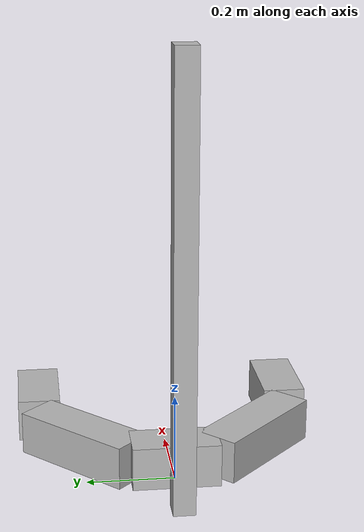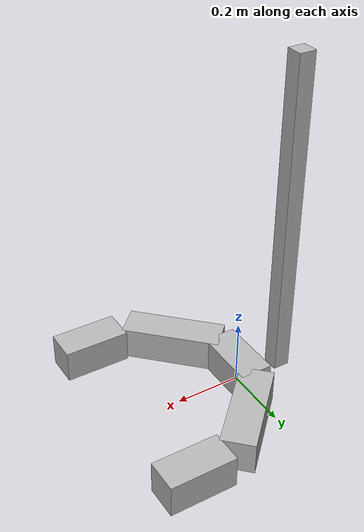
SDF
<?xml version="1.0" ?>
<sdf version="1.5">
  <model name="simple_gripper">
    <joint name="riser_world" type="revolute">
      <child>riser</child>
      <parent>world</parent>
      <axis>
        <limit><lower>0</lower><upper>0</upper></limit>
        <xyz>0 0 1</xyz>
      </axis>
    </joint>
    <link name="riser">
      <pose>-0.15 0.0 0.5 0 0 0</pose>
      <inertial>
        <mass>10</mass>
      </inertial>
      <collision name="collision">
        <geometry>
          <box>
            <size>0.05 0.05 1.0</size>
          </box>
        </geometry>
        <surface>
          <friction>
            <ode>
              <mu>1.0</mu>
              <mu2>1.0</mu2>
            </ode>
          </friction>
          <contact>
            <ode>
              <kp>10000000.0</kp>
              <kd>1.0</kd>
              <min_depth>0.001</min_depth>
              <max_vel>0.1</max_vel>
            </ode>
          </contact>
        </surface>
      </collision>
      <visual name="visual">
        <geometry>
          <box>
            <size>0.05 0.05 1.0</size>
          </box>
        </geometry>
      </visual>
    </link>
    <link name="palm">
      <pose>0.0 0.0 0.05 0 0 0</pose>
      <inertial>
        <mass>0.5</mass>
      </inertial>
      <collision name="collision">
        <geometry>
          <box>
            <size>0.1 0.2 0.1</size>
          </box>
        </geometry>
        <surface>
          <friction>
            <ode>
              <mu>1.0</mu>
              <mu2>1.0</mu2>
            </ode>
          </friction>
          <contact>
            <ode>
              <kp>10000000.0</kp>
              <kd>1.0</kd>
              <min_depth>0.001</min_depth>
              <max_vel>0.1</max_vel>
            </ode>
          </contact>
        </surface>
      </collision>
      <visual name="visual">
        <geometry>
          <box>
            <size>0.1 0.2 0.1</size>
          </box>
        </geometry>
      </visual>
    </link>
    <link name="left_finger">
      <pose>0.1 0.2 0.05 0 0 -0.78539</pose>
      <inertial>
        <mass>0.1</mass>
      </inertial>
      <collision name="collision">
        <geometry>
          <box>
            <size>0.1 0.3 0.1</size>
          </box>
        </geometry>
        <surface>
          <friction>
            <ode>
              <mu>1.0</mu>
              <mu2>1.0</mu2>
            </ode>
          </friction>
          <contact>
            <ode>
              <kp>10000000.0</kp>
              <kd>1.0</kd>
              <min_depth>0.001</min_depth>
              <max_vel>0.1</max_vel>
            </ode>
          </contact>
        </surface>
      </collision>
      <visual name="visual">
        <geometry>
          <box>
            <size>0.1 0.3 0.1</size>
          </box>
        </geometry>
      </visual>
    </link>
    <link name="left_finger_tip">
      <pose>0.336 0.3 0.05 0 0 1.5707</pose>
      <inertial>
        <mass>0.5</mass>
      </inertial>
      <collision name="collision">
        <geometry>
          <box>
            <size>0.1 0.2 0.1</size>
          </box>
        </geometry>
        <surface>
          <friction>
            <ode>
              <mu>1.0</mu>
              <mu2>1.0</mu2>
            </ode>
          </friction>
          <contact>
            <ode>
              <kp>10000000.0</kp>
              <kd>1.0</kd>
              <min_depth>0.001</min_depth>
              <max_vel>0.1</max_vel>
            </ode>
          </contact>
        </surface>
      </collision>
      <visual name="visual">
        <geometry>
          <box>
            <size>0.1 0.2 0.1</size>
          </box>
        </geometry>
      </visual>
    </link>
    <link name="right_finger">
      <pose>0.1 -0.2 0.05 0 0 .78539</pose>
      <inertial>
        <mass>0.1</mass>
      </inertial>
      <collision name="collision">
        <geometry>
          <box>
            <size>0.1 0.3 0.1</size>
          </box>
        </geometry>
        <surface>
          <friction>
            <ode>
              <mu>1.0</mu>
              <mu2>1.0</mu2>
            </ode>
          </friction>
          <contact>
            <ode>
              <kp>10000000.0</kp>
              <kd>1.0</kd>
              <min_depth>0.001</min_depth>
              <max_vel>0.1</max_vel>
            </ode>
          </contact>
        </surface>
      </collision>
      <visual name="visual">
        <geometry>
          <box>
            <size>0.1 0.3 0.1</size>
          </box>
        </geometry>
      </visual>
    </link>
    <link name="right_finger_tip">
      <pose>0.336 -0.3 0.05 0 0 1.5707</pose>
      <inertial>
        <mass>0.1</mass>
      </inertial>
      <collision name="collision">
        <geometry>
          <box>
            <size>0.1 0.2 0.1</size>
          </box>
        </geometry>
        <surface>
          <friction>
            <ode>
              <mu>1.0</mu>
              <mu2>1.0</mu2>
            </ode>
          </friction>
          <contact>
            <ode>
              <kp>10000000.0</kp>
              <kd>1.0</kd>
              <min_depth>0.001</min_depth>
              <max_vel>0.1</max_vel>
            </ode>
          </contact>
        </surface>
      </collision>
      <visual name="visual">
        <geometry>
          <box>
            <size>0.1 0.2 0.1</size>
          </box>
        </geometry>
      </visual>
    </link>
    <joint name="palm_left_finger" type="revolute">
      <pose>0 -0.15 0 0 0 0</pose>
      <child>left_finger</child>
      <parent>palm</parent>
      <axis>
        <limit>
          <lower>-0.8</lower>
          <upper>0.8</upper>
        </limit>
        <xyz>0 0 1</xyz>
        <use_parent_model_frame>true</use_parent_model_frame>
      </axis>
    </joint>
    <joint name="left_finger_tip" type="revolute">
      <pose>0 0.1 0 0 0 0</pose>
      <child>left_finger_tip</child>
      <parent>left_finger</parent>
      <axis>
        <limit>
          <lower>-0.8</lower>
          <upper>0.8</upper>
        </limit>
        <xyz>0 0 1</xyz>
        <use_parent_model_frame>true</use_parent_model_frame>
      </axis>
    </joint>
    <joint name="palm_right_finger" type="revolute">
      <pose>0 0.15 0 0 0 0</pose>
      <child>right_finger</child>
      <parent>palm</parent>
      <axis>
        <limit>
          <lower>-0.8</lower>
          <upper>0.8</upper>
        </limit>
        <xyz>0 0 1</xyz>
        <use_parent_model_frame>true</use_parent_model_frame>
      </axis>
    </joint>
    <joint name="right_finger_tip" type="revolute">
      <pose>0 0.1 0 0 0 0</pose>
      <child>right_finger_tip</child>
      <parent>right_finger</parent>
      <axis>
        <limit>
          <lower>-0.8</lower>
          <upper>0.8</upper>
        </limit>
        <xyz>0 0 1</xyz>
        <use_parent_model_frame>true</use_parent_model_frame>
      </axis>
    </joint>
    <joint name="palm_riser" type="prismatic">
      <child>palm</child>
      <parent>riser</parent>
      <axis>
        <limit>
          <lower>0</lower>
          <upper>0.9</upper>
        </limit>
        <xyz>0 0 1</xyz>
        <use_parent_model_frame>true</use_parent_model_frame>
      </axis>
    </joint>
    <gripper name="simple_gripper">
      <grasp_check>
        <detach_steps>40</detach_steps>
        <attach_steps>20</attach_steps>
        <min_contact_count>2</min_contact_count>
      </grasp_check>
      <gripper_link>right_finger</gripper_link>
      <gripper_link>right_finger_tip</gripper_link>
      <gripper_link>left_finger</gripper_link>
      <gripper_link>left_finger_tip</gripper_link>
      <palm_link>palm</palm_link>
    </gripper>
  </model>
</sdf>
